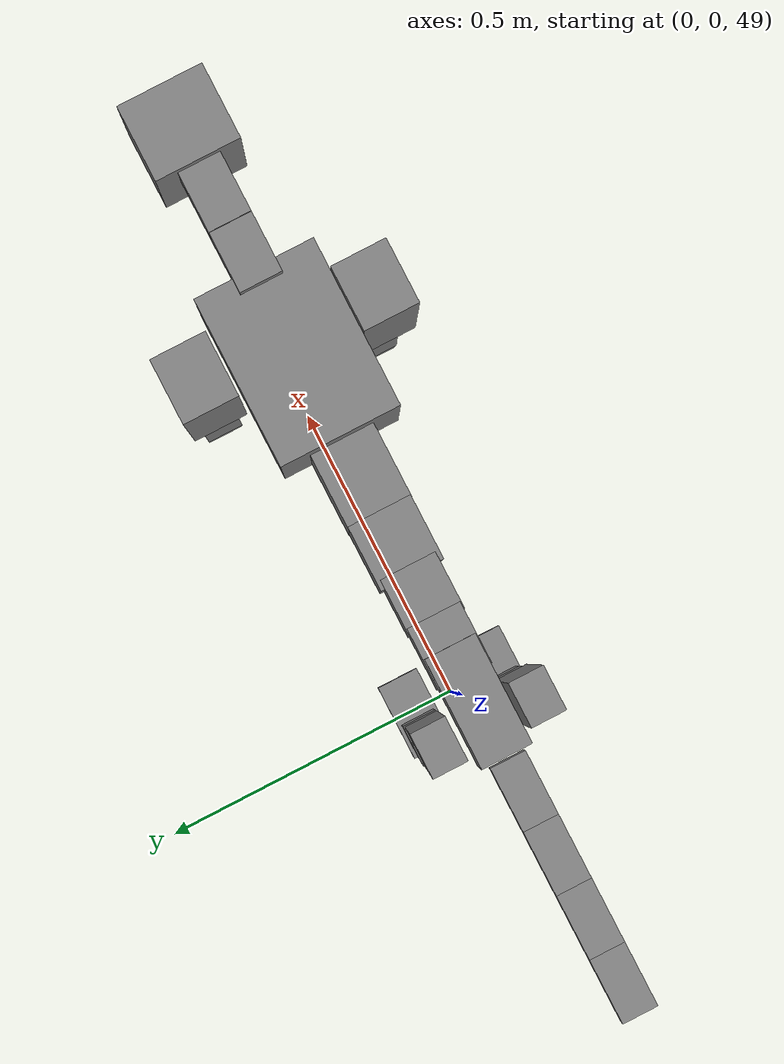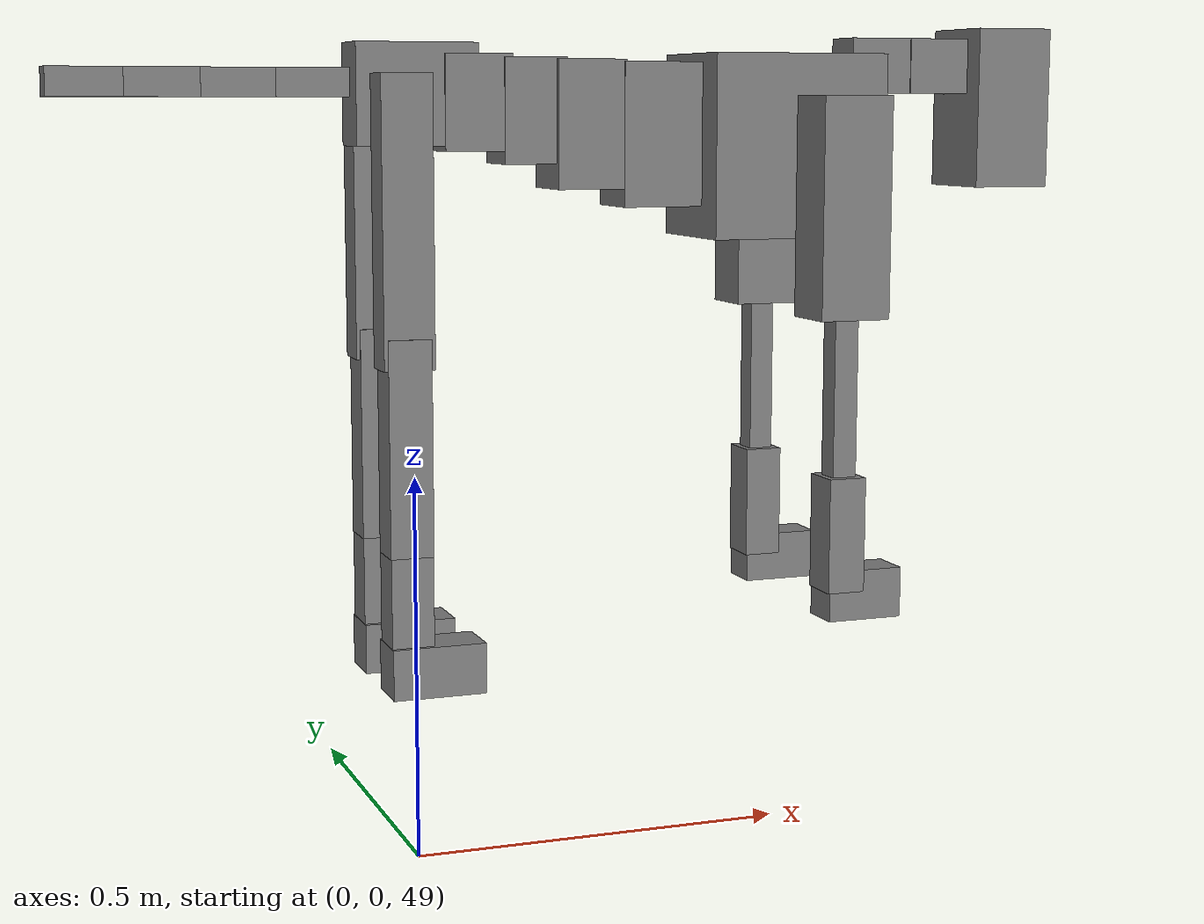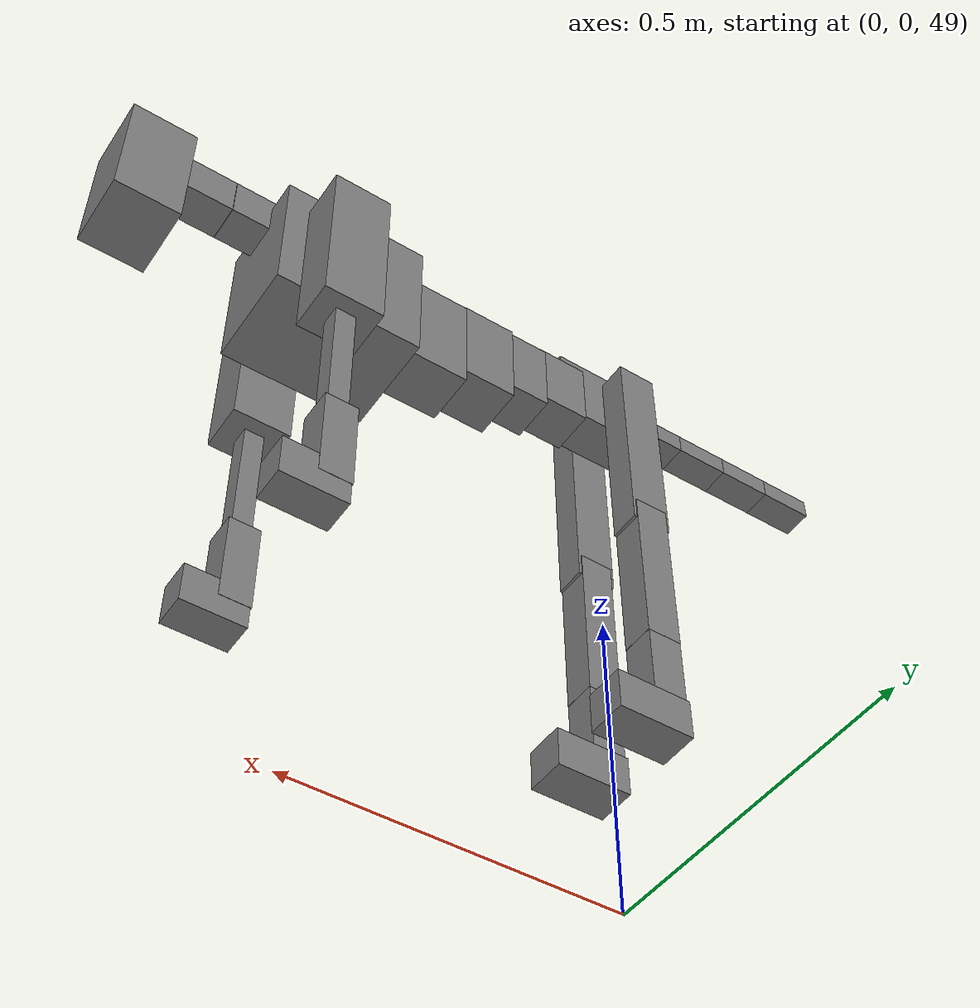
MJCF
<mujoco model="dog">

    <default>
        <joint armature="0.02" stiffness="1" damping="0.2" limited="true"/>
        <geom condim="3" friction="1 0.05 0.05" margin="0.01"/>
        <motor ctrllimited="true" ctrlrange="-1.0 1.0" forcelimited="true" gear="50"/>
    </default>

    <compiler inertiafromgeom="true" angle="radian"/>

    <option timestep="0.016" iterations="50" tolerance="1e-10" solver="Newton" jacobian="dense" cone="pyramidal"/>

    <size nconmax="20000" njmax="60000" nstack="5000000"/>
    <visual>
        <map force="0.1" zfar="30"/>
        <rgba haze="0.15 0.25 0.35 1"/>
        <quality shadowsize="2048"/>
        <global offwidth="800" offheight="800"/>
    </visual>

    <asset>
        <texture type="skybox" builtin="gradient" rgb1="0.3 0.5 0.7" rgb2="0 0 0" width="512" height="512"/>
        <texture name="texplane" type="2d" builtin="checker" rgb1=".2 .3 .4" rgb2=".1 0.15 0.2" width="512" height="512"
                 mark="cross" markrgb=".8 .8 .8"/>
        <texture name="texgeom" type="cube" builtin="flat" mark="cross" width="127" height="1278" rgb1="0.8 0.6 0.4"
                 rgb2="0.8 0.6 0.4" markrgb="1 1 1" random="0.01"/>

        <material name="matplane" reflectance="0.3" texture="texplane" texrepeat="1 1" texuniform="true"/>
        <material name="matgeom" texture="texgeom" texuniform="true" rgba="0.8 0.6 .4 1"/>
    </asset>

    <worldbody>
        <geom name="floor" pos="0 0 0" size="0 0 .25" type="plane" material="matplane" condim="3"/>

        <light directional="false" diffuse=".2 .2 .2" specular="0 0 0" pos="0 0 5" dir="0 0 -1" castshadow="false"/>
        <light mode="targetbodycom" target="torso" directional="false" diffuse=".8 .8 .8" specular="0.3 0.3 0.3"
               pos="0 0 4.0" dir="0 0 -1"/>

        <body name="root" pos="0 0 50">
            <freejoint name="root_1"/>
            <geom type="box" pos="0 0 -0.02" size="0.0774  0.0358  0.063" density="2030"/>

            <body name="spine1" pos="0.054 0 0">
                <joint name="spine1_y" axis="0 1 0" range="0 0.7" limited="true"/>
                <geom type="box" pos="0.02375 0 -0.03" size="0.04375  0.0375  0.05985" density="2030"/>

                <body name="spine2" pos="0.0612 0 0">
                    <joint name="spine2_y" axis="0 1 0" range="-0.15 0.15" limited="true"/>
                    <geom type="box" pos="0.03555  0  -0.04" size="0.04055  0.039  0.06615" density="2030"/>

                    <body name="spine3" pos="0.0730 0 0">
                        <joint name="spine3_y" axis="0 1 0" range="-0.15 0.15" limited="true"/>
                        <geom type="box" pos="0.03555  0  -0.057" size="0.04555  0.0445  0.081" density="2030"/>

                        <body name="spine4" pos="0.0780 0 0">
                            <joint name="spine4_y" axis="0 1 0" range="-0.15 0.15" limited="true"/>
                            <geom type="box" pos="0.05265  0  -0.07" size="0.05265  0.045  0.09135" density="2030"/>

                            <body name="torso" pos="0.1082 0 0">
                                <joint name="torso_y" axis="0 1 0" range="-0.15 0.15" limited="true"/>
                                <geom type="box" pos="0.11925  0  -0.085" size="0.11925  0.085  0.11745"
                                      density="2030"/>

                                <body name="neck1" pos="0.2160  0   0.0180">
                                    <joint name="neck1_y" axis="0 1 0" range="-1.2  -1" limited="true"/>
                                    <geom type="box" pos="0.0423  0  0" size="0.0423  0.03  0.036" density="2325"/>

                                    <body name="neck2" pos="0.0853  0  0">
                                        <joint name="neck2_y" axis="0 1 0" range="0.1  0" limited="true"/>
                                        <geom type="box" pos="0.0423  0  0" size="0.0423  0.03  0.036" density="2325"/>

                                        <body name="head" pos="0.0853  0  0">
                                            <joint name="head_y" axis="0 1 0" range="-0.3  -0.2" limited="true"/>
                                            <geom type="box" pos="0.0531  0  -0.055" size="0.0531  0.06  0.1044"
                                                  density="4030"/>

                                        </body>
                                    </body>
                                </body>

                                <body name="front_shoulder" pos="0.156  0   -0.0480">
                                    <joint name="front_shoulder_y" axis="0 1 0" range="-1 1.5" limited="true"/>
                                    <geom type="box" pos="0 0.13 -0.1138" size="0.0469  0.0401  0.1404" density="1158"/>
                                    <geom type="box" pos="0 -0.13 -0.1138" size="0.0469  0.0401  0.1404"
                                          density="1158"/>

                                    <body name="front_elbow" pos="0  0  -0.2276">
                                        <joint name="front_elbow_y" axis="0 1 0" range="-2 0" limited="true"/>
                                        <geom type="box" pos="0 0.13 -0.1220" size="0.0160  0.0164  0.1220"
                                              density="1081"/>
                                        <geom type="box" pos="0 -0.13 -0.1220" size="0.0160  0.0164  0.1220"
                                              density="1081"/>

                                        <body name="front_wrist" pos="0  0  -0.2441">
                                            <joint name="front_wrist_y" axis="0 1 0" range="-0.2 0" limited="true"/>
                                            <geom type="box" pos="0 0.13 -0.0614" size="0.0250  0.0278  0.0746"
                                                  density="1664"/>
                                            <geom type="box" pos="0 -0.13 -0.0614" size="0.0250  0.0278  0.0746"
                                                  density="1664"/>

                                            <body name="front_finger_end" pos="0  0  -0.1228">
                                                <joint name="front_finger_y" axis="0 1 0" range="-0.4 1"
                                                       limited="true"/>
                                                <geom type="box" pos="0.0275  0.13  -0.0176"
                                                      size="0.0505  0.0275  0.0326" density="1515"/>
                                                <geom type="box" pos="0.0275  -0.13  -0.0176"
                                                      size="0.0505  0.0275  0.0326" density="1515"/>

                                            </body>

                                        </body>
                                    </body>
                                </body>

                            </body>
                        </body>
                    </body>
                </body>
            </body>

            <body name="back_hip" pos="-0.03 0 -0.018">
                <joint name="back_hip_y" axis="0 1 0" range="-1.5 0.3" limited="true"/>
                <geom type="box" pos="0 0.07 -0.1557" size="0.0320  0.0251  0.1785" density="1154"/>
                <geom type="box" pos="0 -0.07 -0.1557" size="0.0320  0.0251  0.1785" density="1154"/>

                <body name="back_knee" pos="0  0  -0.3115">
                    <joint name="back_knee_y" axis="0 1 0" range="0 2.8" limited="true"/>
                    <geom type="box" pos="0 0.07 -0.1191" size="0.0273  0.0269  0.1346" density="1227"/>
                    <geom type="box" pos="0 -0.07 -0.1191" size="0.0273  0.0269  0.1346" density="1227"/>

                    <body name="back_ankle" pos="0  0  -0.2381">
                        <joint name="back_ankle_y" axis="0 1 0" range="-2.2 0" limited="true"/>
                        <geom type="box" pos="0 0.07 -0.0715" size="0.0268  0.0268  0.0828" density="1284"/>
                        <geom type="box" pos="0 -0.07 -0.0715" size="0.0268  0.0268  0.0828" density="1284"/>

                        <body name="back_toe_end" pos="0  0  -0.1431">
                            <joint name="back_toe_y" axis="0 1 0" range="-0.4 1" limited="true"/>
                            <geom type="box" pos="0.0325  0.07  -0.0171" size="0.0596  0.0325  0.0321" density="1515"/>
                            <geom type="box" pos="0.0325  -0.07  -0.0171" size="0.0596  0.0325  0.0321" density="1515"/>

                        </body>
                    </body>
                </body>
            </body>

            <body name="tail1" pos="-0.074 0 -0.006">
                <joint name="tail1_y" axis="0 1 0" range="-0.2 0.2" limited="true"/>
                <geom type="box" pos="-0.0536  0  0" size="0.045  0.025  0.0175" density="1587"/>

                <body name="tail2" pos="-0.09 0 0">
                    <joint name="tail2_y" axis="0 1 0" range="-0.2 0.2" limited="true"/>
                    <geom type="box" pos="-0.0536  0  0" size="0.045  0.025  0.0175" density="1587"/>

                    <body name="tail3" pos="-0.09 0 0">
                        <joint name="tail3_y" axis="0 1 0" range="-0.2 0.2" limited="true"/>
                        <geom type="box" pos="-0.0536  0  0" size="0.045  0.025  0.0175" density="1587"/>

                        <body name="tail4" pos="-0.09 0 0">
                            <joint name="tail4_y" axis="0 1 0" range="-0.2 0.2" limited="true"/>
                            <geom type="box" pos="-0.0536  0  0" size="0.045  0.025  0.0175" density="1587"/>

                        </body>
                    </body>
                </body>
            </body>
        </body>
    </worldbody>

    <actuator>
        <motor joint="spine1_y" forcerange="-150 150     "/>
        <motor joint="spine2_y" forcerange="-150 150     "/>
        <motor joint="spine3_y" forcerange="-150 150     "/>
        <motor joint="spine4_y" forcerange="-150 150     "/>
        <motor joint="torso_y" forcerange="-150 150     "/>
        <motor joint="neck1_y" forcerange="-100 100       "/>
        <motor joint="neck2_y" forcerange="-100 100       "/>
        <motor joint="head_y" forcerange="-150 150       "/>
        <motor joint="front_shoulder_y" forcerange="-175.04 192.18"/>
        <motor joint="front_elbow_y" forcerange="-108.43 110.83"/>
        <motor joint="front_wrist_y" forcerange="-100.53 122.05"/>
        <motor joint="front_finger_y" forcerange="-27.12 79.71"/>
        <motor joint="back_hip_y" forcerange="-316.54 218.56"/>
        <motor joint="back_knee_y" forcerange="-295.34 295.97"/>
        <motor joint="back_angle_y" forcerange="-177.76 150.44"/>
        <motor joint="back_toe_y" forcerange="-57.26 122.62"/>
        <motor joint="tail1_y" forcerange="-50 50     "/>
        <motor joint="tail2_y" forcerange="-50 50     "/>
        <motor joint="tail3_y" forcerange="-50 50     "/>
        <motor joint="tail4_y" forcerange="-50 50     "/>
    </actuator>
</mujoco>
